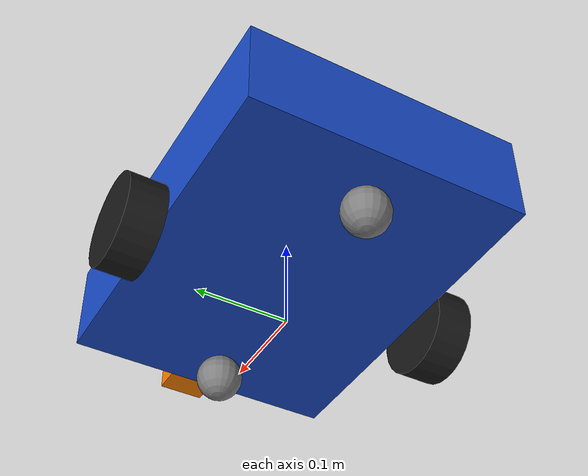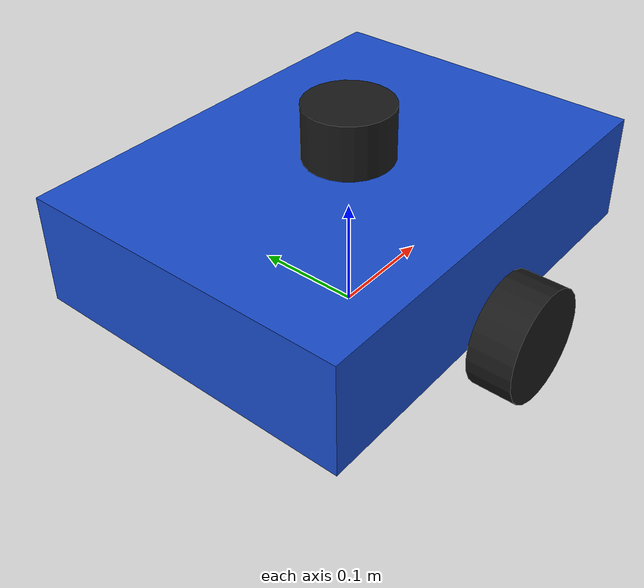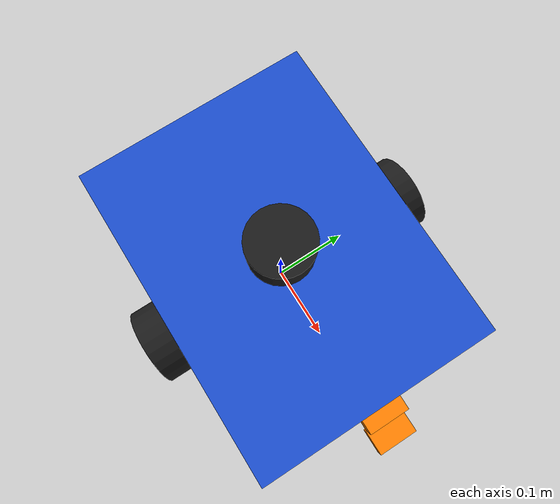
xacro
<?xml version="1.0"?>
<robot name="diffbot" xmlns:xacro="http://www.ros.org/wiki/xacro">

  <!-- ================= パラメータ ================= -->
  <xacro:property name="PI" value="3.14159265358979"/>

  <!-- 車体 -->
  <xacro:property name="base_length" value="0.40"/>
  <xacro:property name="base_width"  value="0.30"/>
  <xacro:property name="base_height" value="0.10"/>
  <xacro:property name="base_mass"   value="5.0"/>

  <!-- 車輪 -->
  <xacro:property name="wheel_radius"     value="0.05"/>
  <xacro:property name="wheel_width"      value="0.04"/>
  <xacro:property name="wheel_mass"       value="0.5"/>
  <xacro:property name="wheel_separation" value="0.35"/>  <!-- 左右車輪の中心間距離 -->

  <!-- キャスター (摩擦ゼロの球) -->
  <xacro:property name="caster_radius" value="0.025"/>
  <xacro:property name="caster_x"      value="0.15"/>

  <!-- ================= 慣性マクロ ================= -->
  <xacro:macro name="box_inertia" params="m x y z">
    <inertial>
      <mass value="${m}"/>
      <inertia ixx="${m*(y*y+z*z)/12}" ixy="0" ixz="0"
               iyy="${m*(x*x+z*z)/12}" iyz="0"
               izz="${m*(x*x+y*y)/12}"/>
    </inertial>
  </xacro:macro>

  <xacro:macro name="cylinder_inertia" params="m r h">
    <inertial>
      <mass value="${m}"/>
      <inertia ixx="${m*(3*r*r+h*h)/12}" ixy="0" ixz="0"
               iyy="${m*(3*r*r+h*h)/12}" iyz="0"
               izz="${m*r*r/2}"/>
    </inertial>
  </xacro:macro>

  <xacro:macro name="sphere_inertia" params="m r">
    <inertial>
      <mass value="${m}"/>
      <inertia ixx="${2*m*r*r/5}" ixy="0" ixz="0"
               iyy="${2*m*r*r/5}" iyz="0"
               izz="${2*m*r*r/5}"/>
    </inertial>
  </xacro:macro>

  <!-- ================= 色 (RViz 用) ================= -->
  <material name="blue">  <color rgba="0.1 0.3 0.8 1.0"/></material>
  <material name="black"> <color rgba="0.1 0.1 0.1 1.0"/></material>
  <material name="gray">  <color rgba="0.5 0.5 0.5 1.0"/></material>
  <material name="orange"><color rgba="1.0 0.5 0.0 1.0"/></material>

  <!-- ================= 車体 ================= -->
  <link name="base_footprint"/>

  <joint name="base_joint" type="fixed">
    <parent link="base_footprint"/>
    <child link="base_link"/>
    <origin xyz="0 0 ${wheel_radius}" rpy="0 0 0"/>
  </joint>

  <link name="base_link">
    <visual>
      <origin xyz="0 0 ${base_height/2}" rpy="0 0 0"/>
      <geometry><box size="${base_length} ${base_width} ${base_height}"/></geometry>
      <material name="blue"/>
    </visual>
    <collision>
      <origin xyz="0 0 ${base_height/2}" rpy="0 0 0"/>
      <geometry><box size="${base_length} ${base_width} ${base_height}"/></geometry>
    </collision>
    <xacro:box_inertia m="${base_mass}" x="${base_length}" y="${base_width}" z="${base_height}"/>
  </link>

  <!-- ================= 車輪 ================= -->
  <xacro:macro name="wheel" params="side y_sign">
    <link name="${side}_wheel_link">
      <visual>
        <origin xyz="0 0 0" rpy="${PI/2} 0 0"/>
        <geometry><cylinder radius="${wheel_radius}" length="${wheel_width}"/></geometry>
        <material name="black"/>
      </visual>
      <collision>
        <origin xyz="0 0 0" rpy="${PI/2} 0 0"/>
        <geometry><cylinder radius="${wheel_radius}" length="${wheel_width}"/></geometry>
      </collision>
      <xacro:cylinder_inertia m="${wheel_mass}" r="${wheel_radius}" h="${wheel_width}"/>
    </link>

    <joint name="${side}_wheel_joint" type="continuous">
      <parent link="base_link"/>
      <child link="${side}_wheel_link"/>
      <origin xyz="0 ${y_sign*wheel_separation/2} 0" rpy="0 0 0"/>
      <axis xyz="0 1 0"/>
    </joint>

    <gazebo reference="${side}_wheel_link">
      <mu1>1.0</mu1>
      <mu2>1.0</mu2>
    </gazebo>
  </xacro:macro>

  <xacro:wheel side="left"  y_sign="1"/>
  <xacro:wheel side="right" y_sign="-1"/>

  <!-- ================= キャスター ================= -->
  <xacro:macro name="caster" params="name x">
    <link name="${name}_caster_link">
      <visual>
        <geometry><sphere radius="${caster_radius}"/></geometry>
        <material name="gray"/>
      </visual>
      <collision>
        <geometry><sphere radius="${caster_radius}"/></geometry>
      </collision>
      <xacro:sphere_inertia m="0.1" r="${caster_radius}"/>
    </link>

    <joint name="${name}_caster_joint" type="fixed">
      <parent link="base_link"/>
      <child link="${name}_caster_link"/>
      <origin xyz="${x} 0 ${caster_radius - wheel_radius}" rpy="0 0 0"/>
    </joint>

    <gazebo reference="${name}_caster_link">
      <mu1>0.0</mu1>
      <mu2>0.0</mu2>
    </gazebo>
  </xacro:macro>

  <xacro:caster name="front" x="${caster_x}"/>
  <xacro:caster name="rear"  x="${-caster_x}"/>

  <!-- ================= 3D LiDAR ================= -->
  <link name="lidar_link">
    <visual>
      <geometry><cylinder radius="0.04" length="0.05"/></geometry>
      <material name="black"/>
    </visual>
    <collision>
      <geometry><cylinder radius="0.04" length="0.05"/></geometry>
    </collision>
    <xacro:cylinder_inertia m="0.2" r="0.04" h="0.05"/>
  </link>

  <joint name="lidar_joint" type="fixed">
    <parent link="base_link"/>
    <child link="lidar_link"/>
    <origin xyz="0 0 ${base_height + 0.025}" rpy="0 0 0"/>
  </joint>

  <!-- ================= カメラ共通マクロ ================= -->
  <!--
    camera_link         : x 前 / y 左 / z 上 (ROS の通常の座標系)
    camera_optical_frame: z 前 / x 右 / y 下 (画像処理で使う光学座標系, REP-103)
  -->
  <xacro:macro name="camera_link" params="name xyz rpy">
    <link name="${name}_link">
      <visual>
        <geometry><box size="0.02 0.05 0.03"/></geometry>
        <material name="orange"/>
      </visual>
      <collision>
        <geometry><box size="0.02 0.05 0.03"/></geometry>
      </collision>
      <xacro:box_inertia m="0.05" x="0.02" y="0.05" z="0.03"/>
    </link>

    <joint name="${name}_joint" type="fixed">
      <parent link="base_link"/>
      <child link="${name}_link"/>
      <origin xyz="${xyz}" rpy="${rpy}"/>
    </joint>

    <link name="${name}_optical_frame"/>
    <joint name="${name}_optical_joint" type="fixed">
      <parent link="${name}_link"/>
      <child link="${name}_optical_frame"/>
      <origin xyz="0 0 0" rpy="${-PI/2} 0 ${-PI/2}"/>
    </joint>
  </xacro:macro>

  <!-- 前方カメラ: 車体前面 -->
  <xacro:camera_link name="front_camera"
                     xyz="${base_length/2 + 0.01} 0 ${base_height*0.7}" rpy="0 0 0"/>

  <!-- 下向きカメラ: 車体前方に張り出し、真下 (pitch +90deg) を向く。地面から約 0.08 m -->
  <xacro:camera_link name="down_camera"
                     xyz="${base_length/2 + 0.04} 0 0.03" rpy="0 ${PI/2} 0"/>

  <!-- ================= IMU ================= -->
  <link name="imu_link"/>
  <joint name="imu_joint" type="fixed">
    <parent link="base_link"/>
    <child link="imu_link"/>
    <origin xyz="0 0 ${base_height/2}" rpy="0 0 0"/>
  </joint>

  <!-- Gazebo 用の設定 (センサ・プラグイン) は別ファイル -->
  <xacro:include filename="$(find diffbot_sim)/urdf/diffbot.gazebo.xacro"/>

</robot>
